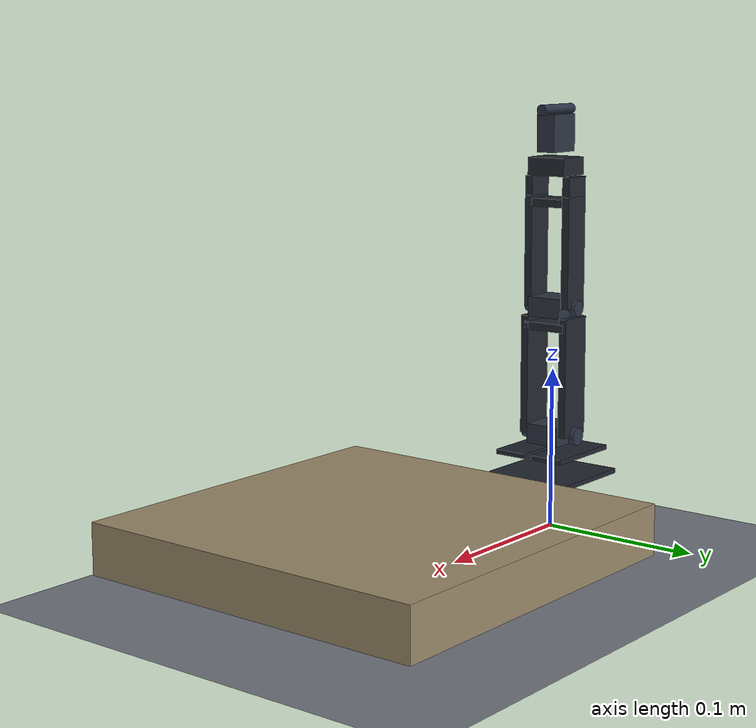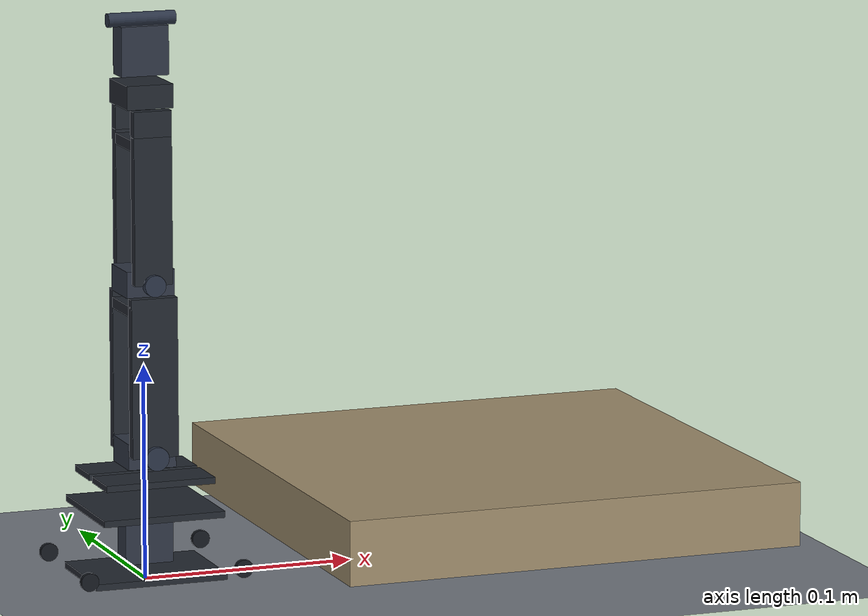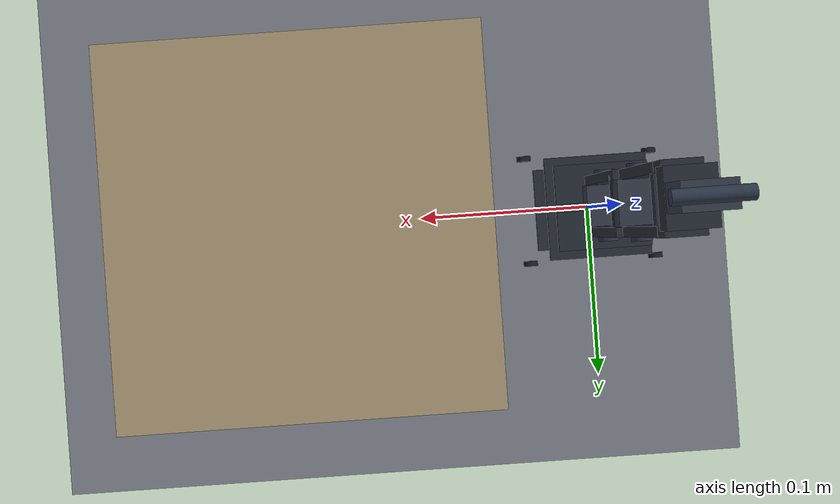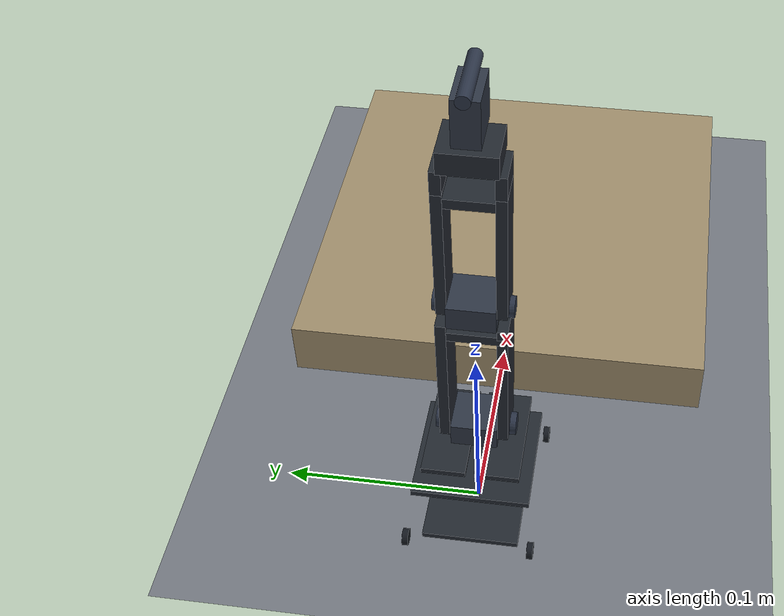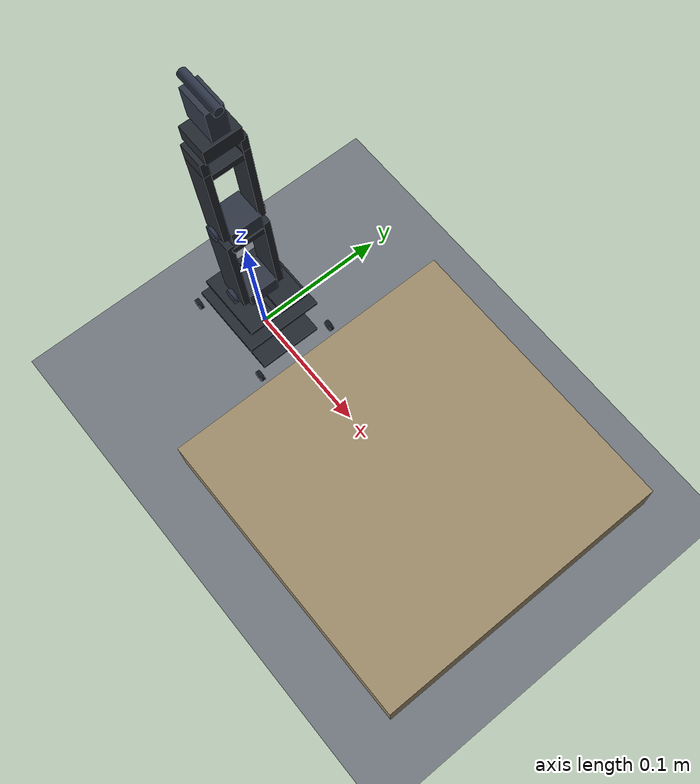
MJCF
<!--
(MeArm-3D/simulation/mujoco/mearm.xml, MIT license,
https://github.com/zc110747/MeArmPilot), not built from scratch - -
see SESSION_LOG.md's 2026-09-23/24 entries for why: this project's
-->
<?xml version="1.0" encoding="utf-8"?>
<mujoco model="mearm">
  <compiler angle="radian" autolimits="true"/>
  <option timestep="0.001" integrator="implicitfast" solver="Newton" iterations="80" tolerance="1e-10" gravity="0 0 -9.81"/>
  <default>
    <geom friction="1 0.005 0.0001" solref="0.02 1" solimp="0.9 0.95 0.001" margin="0.001" condim="3" density="0"/>
    <default class="world">
      <geom contype="1" conaffinity="3" group="1" density="0"/>
    </default>
    <default class="visual">
      <geom contype="0" conaffinity="0" group="2" density="0" condim="1" margin="0" solref="0.02 1"/>
    </default>
    <default class="collision">
      <geom contype="2" conaffinity="3" group="3" density="0"/>
    </default>
    <default class="arm">
      <joint type="hinge" damping="0.01" frictionloss="0.005" armature="0.0005" limited="true"/>
      <position kp="5" kv="0.5" forcerange="-2.0 2.0"/>
    </default>
  </default>
  <worldbody>
    <light name="key_light" pos="0.3 0.3 0.6" dir="-0.5 -0.5 -1" diffuse="0.8 0.8 0.8" specular="0.2 0.2 0.2"/>
    <light name="fill_light" pos="-0.3 -0.2 0.4" dir="0.5 0.3 -1" diffuse="0.35 0.35 0.35"/>
    <geom name="floor" class="world" type="plane" size="0.6 0.6 0.01" pos="0 0 0" rgba="0.45 0.47 0.5 1"/>
    <body name="table" pos="0.17 0 0.031">
      <geom name="table_top" class="world" type="box" size="0.11 0.11 0.015" rgba="0.62 0.55 0.42 1"
            contype="0" conaffinity="0"/>
    </body>
    <body name="base_link" pos="0 0 0">
      <inertial pos="0 0 0.006" mass="0.0266" diaginertia="1.57915333e-05 2.04731333e-05 3.44913333e-05"/>
      <geom name="base_link_coll" class="collision" type="box" size="0.047 0.041 0.01" pos="0 0 0.01" rgba="0.15 0.85 0.45 0.35"/>
      <geom name="base_link_vis" class="visual" type="box" size="0.03143 0.02405 0.0015" pos="0 0 0.0035" quat="1 0 0 0" rgba="0.137 0.157 0.188 1"/>
      <geom name="base_link_vis0" class="visual" type="cylinder" size="0.0042 0.0015" pos="0.037 0.031 0.0085" quat="0.70710678 0.70710678 0 0" rgba="0.0863 0.102 0.129 1"/>
      <geom name="base_link_vis1" class="visual" type="cylinder" size="0.0042 0.0015" pos="-0.037 0.031 0.0085" quat="0.70710678 0.70710678 0 0" rgba="0.0863 0.102 0.129 1"/>
      <geom name="base_link_vis2" class="visual" type="cylinder" size="0.0042 0.0015" pos="0.037 -0.031 0.0085" quat="0.70710678 0.70710678 0 0" rgba="0.0863 0.102 0.129 1"/>
      <geom name="base_link_vis3" class="visual" type="cylinder" size="0.0042 0.0015" pos="-0.037 -0.031 0.0085" quat="0.70710678 0.70710678 0 0" rgba="0.0863 0.102 0.129 1"/>
      <geom name="base_link_vis4" class="visual" type="box" size="0.0114 0.0061 0.01125" pos="0 0 0.0195" quat="1 0 0 0" rgba="0.184 0.212 0.267 1"/>
      <body name="column_link" pos="0 0 0">
        <inertial pos="0 0 0.03" mass="0.0336" diaginertia="1.008e-05 1.008e-05 2.24e-06"/>
        <joint name="base" class="arm" axis="0 0 1" range="-1.08210414 1.08210414"/>
        <geom name="column_link_coll" class="collision" type="capsule" size="0.014 0.006" pos="0 0 0.04" rgba="0.15 0.85 0.45 0.35"/>
        <geom name="column_link_vis" class="visual" type="box" size="0.029 0.029 0.0015" pos="0 0 0.034" quat="1 0 0 0" rgba="0.137 0.157 0.188 1"/>
        <geom name="column_link_vis0" class="visual" type="box" size="0.026 0.0108 0.0015" pos="0 0.013 0.049" quat="1 0 0 0" rgba="0.137 0.157 0.188 1"/>
        <geom name="column_link_vis1" class="visual" type="box" size="0.026 0.0108 0.0015" pos="0 -0.013 0.049" quat="1 0 0 0" rgba="0.137 0.157 0.188 1"/>
        <geom name="column_link_vis2" class="visual" type="box" size="0.0114 0.0061 0.01125" pos="0 0 0.06" quat="0.70710678 -0.70710678 0 0" rgba="0.184 0.212 0.267 1"/>
        <body name="upper_arm_link" pos="0 0 0.06">
          <inertial pos="0 0 0.04" mass="0.037" diaginertia="1.97333333e-05 1.97333333e-05 2.46666667e-06"/>
          <joint name="shoulder" class="arm" axis="0 1 0" range="-0.141261412 0.898057932"/>
          <geom name="upper_arm_link_coll" class="collision" type="capsule" size="0.013 0.027" pos="0 0 0.04" rgba="0.15 0.85 0.45 0.35"/>
          <geom name="upper_arm_link_vis" class="visual" type="box" size="0.011 0.0025 0.037" pos="0 0.014 0.037" quat="1 0 0 0" rgba="0.137 0.157 0.188 1"/>
          <geom name="upper_arm_link_vis0" class="visual" type="box" size="0.011 0.0025 0.037" pos="0 -0.014 0.037" quat="1 0 0 0" rgba="0.137 0.157 0.188 1"/>
          <geom name="upper_arm_link_vis1" class="visual" type="cylinder" size="0.0055 0.002" pos="0 0.0175 0" quat="0.70710678 0.70710678 0 0" rgba="0.169 0.204 0.275 1"/>
          <geom name="upper_arm_link_vis2" class="visual" type="cylinder" size="0.0055 0.002" pos="0 -0.0175 0" quat="0.70710678 0.70710678 0 0" rgba="0.169 0.204 0.275 1"/>
          <geom name="upper_arm_link_vis3" class="visual" type="box" size="0.011 0.014 0.0025" pos="0 0 0.068" quat="1 0 0 0" rgba="0.137 0.157 0.188 1"/>
          <geom name="upper_arm_link_vis4" class="visual" type="box" size="0.0114 0.0061 0.01125" pos="0 0 0.08" quat="0.70710678 -0.70710678 0 0" rgba="0.184 0.212 0.267 1"/>
          <body name="forearm_link" pos="0 0 0.08">
            <inertial pos="0 0 0.04" mass="0.019" diaginertia="1.01333333e-05 1.01333333e-05 1.26666667e-06"/>
            <joint name="elbow" class="arm" axis="0 1 0" range="0.994603031 2.61715444"/>
            <geom name="forearm_link_coll" class="collision" type="capsule" size="0.011 0.029" pos="0 0 0.04" rgba="0.15 0.85 0.45 0.35"/>
            <geom name="forearm_link_vis" class="visual" type="box" size="0.009 0.0025 0.034" pos="0 0.0135 0.034" quat="1 0 0 0" rgba="0.137 0.157 0.188 1"/>
            <geom name="forearm_link_vis0" class="visual" type="box" size="0.009 0.0025 0.034" pos="0 -0.0135 0.034" quat="1 0 0 0" rgba="0.137 0.157 0.188 1"/>
            <geom name="forearm_link_vis1" class="visual" type="cylinder" size="0.005 0.002" pos="0 0.0165 0" quat="0.70710678 0.70710678 0 0" rgba="0.169 0.204 0.275 1"/>
            <geom name="forearm_link_vis2" class="visual" type="cylinder" size="0.005 0.002" pos="0 -0.0165 0" quat="0.70710678 0.70710678 0 0" rgba="0.169 0.204 0.275 1"/>
            <geom name="forearm_link_vis3" class="visual" type="box" size="0.009 0.011 0.0025" pos="0 0 0.064" quat="1 0 0 0" rgba="0.137 0.157 0.188 1"/>
            <geom name="forearm_link_vis4" class="visual" type="box" size="0.009 0.0025 0.006" pos="0 0.0135 0.074" quat="1 0 0 0" rgba="0.137 0.157 0.188 1"/>
            <geom name="forearm_link_vis5" class="visual" type="box" size="0.009 0.0025 0.006" pos="0 -0.0135 0.074" quat="1 0 0 0" rgba="0.137 0.157 0.188 1"/>
            <body name="tool_link" pos="0 0 0.08">
              <inertial pos="0 0 0.02" mass="0.022" diaginertia="2.93333333e-06 2.93333333e-06 1.46666667e-06"/>
              <joint name="tool" class="arm" axis="0 1 0" range="-0.940003288 -0.286958051"/>
              <geom name="tool_link_coll" class="collision" type="capsule" size="0.012 0.008" pos="0 0 0.02" rgba="0.15 0.85 0.45 0.35"/>
              <geom name="tool_link_vis" class="visual" type="box" size="0.011 0.013 0.0055" pos="0 0 0.006" quat="1 0 0 0" rgba="0.137 0.157 0.188 1"/>
              <geom name="tool_link_vis0" class="visual" type="box" size="0.0114 0.0061 0.01125" pos="0 0 0.026" quat="0.70710678 0 0.70710678 0" rgba="0.184 0.212 0.267 1"/>
              <geom name="tool_link_vis1" class="visual" type="cylinder" size="0.0032 0.016" pos="0 0 0.04" quat="0.5 0.5 0.5 0.5" rgba="0.169 0.204 0.275 1"/>
              <site name="tcp" pos="0 0 0.04" size="0.004" rgba="1 0.85 0.2 1" group="4"/>
              <body name="jaw_link" pos="0 0 0.04">
                <inertial pos="0 0 0.017" mass="0.0033" diaginertia="2.2e-07 2.2e-07 2.2e-07"/>
                <joint name="claw" class="arm" axis="1 0 0" range="0.13962634 1.78023584"/>
                <geom name="jaw_link_coll" class="collision" type="capsule" size="0.005 0.01" pos="0 0 0" quat="0.70710678 0 0.70710678 0" rgba="0.15 0.85 0.45 0.35"/>
              </body>
            </body>
          </body>
        </body>
      </body>
    </body>
  </worldbody>
  <contact>
    <exclude body1="base_link" body2="column_link"/>
    <exclude body1="column_link" body2="upper_arm_link"/>
    <exclude body1="upper_arm_link" body2="forearm_link"/>
    <exclude body1="forearm_link" body2="tool_link"/>
    <exclude body1="tool_link" body2="jaw_link"/>
  </contact>
  <actuator>
    <position name="base" class="arm" joint="base" ctrlrange="-1.08210414 1.08210414"/>
    <position name="shoulder" class="arm" joint="shoulder" ctrlrange="-0.141261412 0.898057932"/>
    <position name="elbow" class="arm" joint="elbow" ctrlrange="0.994603031 2.61715444"/>
    <position name="claw" class="arm" joint="claw" ctrlrange="0.13962634 1.78023584"/>
  </actuator>
  <tendon>
    <fixed name="tool_lock_tendon">
      <joint joint="shoulder" coef="1"/>
      <joint joint="elbow" coef="1"/>
      <joint joint="tool" coef="1"/>
    </fixed>
  </tendon>
  <equality>
    <tendon name="tool_lock" tendon1="tool_lock_tendon" polycoef="1.57079632679 0 0 0 0"/>
  </equality>
</mujoco>
